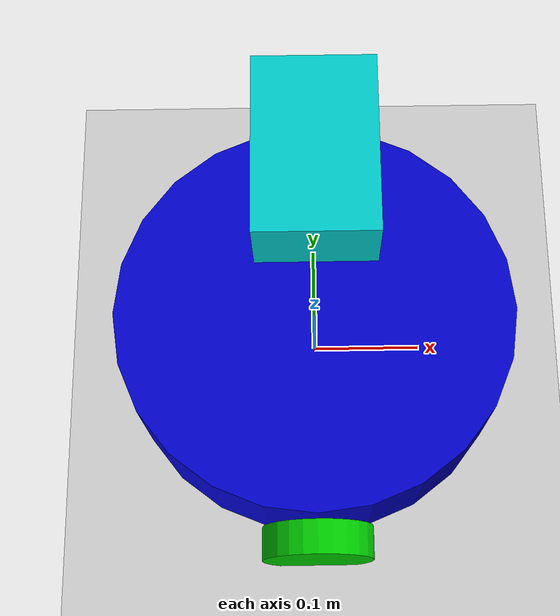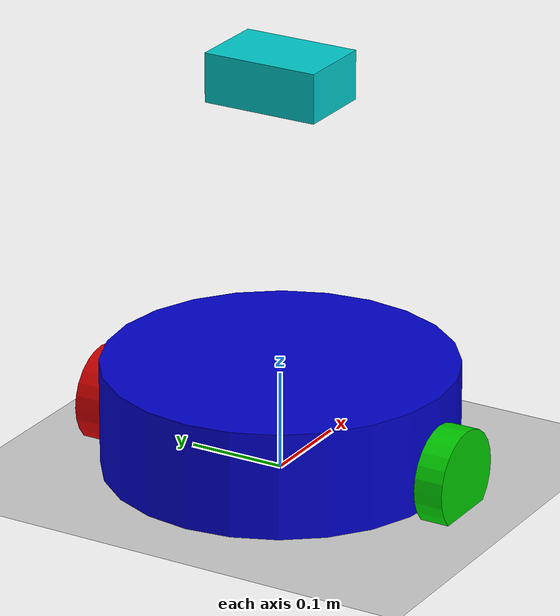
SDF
<sdf version="1.8">
 <world name="dynamic_human_world">
  <plugin filename="gz-sim-physics-system" name="gz::sim::systems::Physics"/>
  <plugin filename="gz-sim-sensors-system" name="gz::sim::systems::Sensors">
   <render_engine>ogre2</render_engine>
  </plugin>
  <plugin filename="gz-sim-user-commands-system" name="gz::sim::systems::UserCommands"/>
  <plugin filename="gz-sim-scene-broadcaster-system" name="gz::sim::systems::SceneBroadcaster"/>
  <light type="directional" name="sun">
   <pose>0 0 10 0 0 0</pose>
   <diffuse>0.8 0.8 0.8 1</diffuse>
   <specular>0.2 0.2 0.2 1</specular>
   <direction>-0.5 0.1 -0.9</direction>
  </light>
  <model name="ground_plane">
   <static>true</static>
   <link name="link">
    <collision name="collision">
     <geometry><plane><normal>0.0 0.0 1</normal><size>100 100</size></plane></geometry>
    </collision>
    <visual name="visual">
     <geometry><plane><normal>0.0 0.0 1</normal><size>100 100</size></plane></geometry>
     <material>
      <ambient>0.8 0.8 0.8 1</ambient>
      <diffuse>0.8 0.8 0.8 1</diffuse>
      <specular>0.8 0.8 0.8 1</specular>
     </material>
    </visual>
   </link>
  </model>
  <include>
   <name>qbot</name>
   <uri>/media/nilum/my-stuff/Research/Human_Robot_Interaction/proactive-social-nav/ros2_ws/src/qbot_description/sdf/qbot.sdf</uri>
  </include>
 </world>
</sdf>

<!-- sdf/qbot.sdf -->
<sdf version="1.8">
    <model name='qbot' canonical_link='base_link'>
        <pose>0 0 0 0 0 0</pose>

        <plugin filename="libgz_ros2_control-system.so" name="gz_ros2_control::GazeboSimROS2ControlPlugin">
            <parameters>/media/nilum/my-stuff/Research/Human_Robot_Interaction/proactive-social-nav/ros2_ws/install/qbot_description/share/qbot_description/config/qbot_controllers.yaml</parameters>
        </plugin>

        <ros2_control name='qbot_system' type='system'>
        <hardware>
            <plugin>gz_ros2_control/GazeboSimSystem</plugin>
        </hardware>
            <joint name="wheel_left_joint">
                <command_interface name="velocity">
                    <param name="min">-10</param>
                    <param name="max">10</param>
                </command_interface>
                <state_interface name="position"/>
                <state_interface name="velocity"/>
            </joint>
            <joint name="wheel_right_joint">
                <command_interface name="velocity">
                    <param name="min">-10</param>
                    <param name="max">10</param>
                </command_interface>
                <state_interface name="position"/>
                <state_interface name="velocity"/>
            </joint>
        </ros2_control>

        <!-- Base -->
        <link name='base_link'>
            <pose>0 0 0.05949 0 0 0</pose>
            <inertial>
                <!-- TODO: Add mass-->
                <mass>2.4</mass>
                <inertia>
                    <ixx>0.019995</ixx>
                    <ixy>0</ixy>
                    <ixz>0</ixz>
                    <iyy>0.019995</iyy>
                    <iyz>0</iyz>
                    <izz>0.03675</izz>
                </inertia>
            </inertial>
            <visual name='base_visual'>
                <!-- TODO: Add geometry-->
                <geometry>
                    <cylinder>
                        <radius>0.178</radius>
                        <length>0.10938</length>
                    </cylinder>
                </geometry>
                <material>
                    <ambient>0.0 0.0 0.8 1</ambient>
                    <diffuse>0.0 0.0 0.8 1</diffuse>
                    <specular>1 1 1 1</specular>
                </material>
            </visual>
            <!-- TODO: Add collision geometry-->
            <collision name='base_collision'>
                <geometry>
                    <cylinder>
                        <radius>0.178</radius>
                        <length>0.10938</length>
                    </cylinder>
                </geometry>
            </collision>
        </link>

        <!-- Left wheel -->
        <link name='wheel_left_link'>
            <pose relative_to='base_link'>0 0.193 -0.0245 -1.57079632679 0 0</pose>
            <inertial>
                <!-- TODO: Add mass-->
                <mass>0.01</mass>
                <inertia>
                    <ixx>0.001</ixx>
                    <ixy>0</ixy>
                    <ixz>0</ixz>
                    <iyy>0.001</iyy>
                    <iyz>0</iyz>
                    <izz>0.001</izz>
                </inertia>
            </inertial>
            <visual name='wheel_left_visual'>
                <!-- TODO: Add geometry-->
                <geometry>
                    <cylinder>
                        <radius>0.05</radius>
                        <length>0.03</length>
                    </cylinder>
                </geometry>
                <material>
                    <ambient>0.8 0.0 0.0 1</ambient>
                    <diffuse>0.8 0.0 0.0 1</diffuse>
                    <specular>1 1 1 1</specular>
                </material>
            </visual>
            <!-- TODO: Add collision geometry-->
            <collision name='wheel_left_collision'>
                <geometry>
                    <cylinder>
                        <radius>0.05</radius>
                        <length>0.03</length>
                    </cylinder>
                </geometry>
            </collision>
        </link>

        <!-- Right wheel -->
        <link name='wheel_right_link'>
            <pose relative_to='base_link'>0 -0.193 -0.0245 -1.57079632679 0 0</pose>
            <inertial>
                <!-- TODO: Add mass-->
                <mass>0.01</mass>
                <inertia>
                    <ixx>0.001</ixx>
                    <ixy>0</ixy>
                    <ixz>0</ixz>
                    <iyy>0.001</iyy>
                    <iyz>0</iyz>
                    <izz>0.001</izz>
                </inertia>
            </inertial>
            <visual name='wheel_right_visual'>
                <!-- TODO: Add geometry-->
                <geometry>
                    <cylinder>
                        <radius>0.05</radius>
                        <length>0.03</length>
                    </cylinder>
                </geometry>
                <material>
                    <ambient>0.0 0.8 0.0 1</ambient>
                    <diffuse>0.0 0.8 0.0 1</diffuse>
                    <specular>1 1 1 1</specular>
                </material>
            </visual>
            <!-- TODO: Add collision geometry-->
            <collision name='wheel_right_collision'>
                <geometry>
                    <cylinder>
                        <radius>0.05</radius>
                        <length>0.03</length>
                    </cylinder>
                </geometry>
            </collision>
        </link>

        <!-- Front caster -->
        <link name='caster_front_link'>
            <pose relative_to='base_link'>0.115 0 -0.0485 -1.57079632679 0 0</pose>
            <inertial>
                <!-- TODO: Add mass-->
                <mass>0.01</mass>
                <inertia>
                    <ixx>0.001</ixx>
                    <ixy>0</ixy>
                    <ixz>0</ixz>
                    <iyy>0.001</iyy>
                    <iyz>0</iyz>
                    <izz>0.001</izz>
                </inertia>
            </inertial>
            <visual name='caster_front_visual'>
                <!-- TODO: Add geometry-->
                <geometry>
                    <cylinder>
                        <radius>0.025</radius>
                        <length>0.03</length>
                    </cylinder>
                </geometry>
                <material>
                    <ambient>0.8 0.8 0.0 1</ambient>
                    <diffuse>0.8 0.8 0.0 1</diffuse>
                    <specular>1 1 1 1</specular>
                </material>
            </visual>
            <!-- TODO: Add collision geometry-->
            <collision name='caster_front_collision'>
                <geometry>
                    <cylinder>
                        <radius>0.025</radius>
                        <length>0.03</length>
                    </cylinder>
                </geometry>
            </collision>
        </link>

        <!-- Back caster -->
        <link name='caster_back_link'>
            <pose relative_to='base_link'>-0.135 0 -0.0485 -1.57079632679 0 0</pose>
            <inertial>
                <!-- TODO: Add mass-->
                <mass>0.01</mass>
                <inertia>
                    <ixx>0.001</ixx>
                    <ixy>0</ixy>
                    <ixz>0</ixz>
                    <iyy>0.001</iyy>
                    <iyz>0</iyz>
                    <izz>0.001</izz>
                </inertia>
            </inertial>
            <visual name='caster_back_visual'>
                <geometry>
                    <cylinder>
                        <radius>0.025</radius>
                        <length>0.03</length>
                    </cylinder>
                </geometry>
                <material>
                    <ambient>0.8 0.0 0.8 1</ambient>
                    <diffuse>0.8 0.0 0.8 1</diffuse>
                    <specular>1 1 1 1</specular>
                </material>
            </visual>
            <!-- TODO: Add collision geometry-->
            <collision name='caster_back_collision'>
                <geometry>
                    <cylinder>
                        <radius>0.025</radius>
                        <length>0.03</length>
                    </cylinder>
                </geometry>
            </collision>
        </link>

        <!-- Sensor mount -->
        <link name='sensor_mount_link'>
            <pose relative_to='base_link'>0 0 0.35 0 0 0</pose>
            <inertial>
                <!-- TODO: Add mass-->
                <mass>0.001</mass>
                <inertia>
                    <ixx>0.0001</ixx>
                    <ixy>0</ixy>
                    <ixz>0</ixz>
                    <iyy>0.000001</iyy>
                    <iyz>0</iyz>
                    <izz>0.0001</izz>
                </inertia>
            </inertial>
            <visual name='sensor_mount_visual'>
                <!-- TODO: Add geometry-->
                <geometry>
                    <box>
                        <size>0.08 0.12 0.05</size>
                    </box>
                </geometry>
                <material>
                    <ambient>0.0 0.8 0.8 1</ambient>
                    <diffuse>0.0 0.8 0.8 1</diffuse>
                    <specular>1 1 1 1</specular>
                </material>
            </visual>
            <!-- TODO: Add collision geometry-->
            <collision name='sensor_mount_collision'>
                <geometry>
                    <box>
                        <size>0.08 0.12 0.05</size>
                    </box>
                </geometry>
            </collision>
            <sensor name='lidar' type='gpu_lidar'>
                <topic>/scan</topic>
                <update_rate>10</update_rate>
                <always_on>1</always_on>
                <visualize>true</visualize>
                <pose relative_to='sensor_mount_link'>0 0 0 0 0 0</pose>
                <gz_frame_id>sensor_mount_link</gz_frame_id>
                <lidar>
                    <scan>
                        <horizontal>
                            <samples>360</samples>
                            <resolution>1</resolution>
                            <min_angle>-3.14159</min_angle>
                            <max_angle>3.14159</max_angle>
                        </horizontal>
                    </scan>
                    <range>
                        <min>0.12</min>
                        <max>10.0</max>
                        <resolution>0.01</resolution>
                    </range>
                    <noise>
                        <type>gaussian</type>
                        <mean>0.0</mean>
                        <stddev>0.01</stddev>
                    </noise>
                </lidar>
            </sensor>
        </link>

        <!-- Wheel Joints -->
        <joint name='wheel_left_joint' type='revolute'>
            <parent>base_link</parent>
            <child>wheel_left_link</child>
            <axis>
                <xyz>0 0 1</xyz>
                <limit>
                    <lower>-1.79769e+308</lower>
                    <upper>1.79769e+308</upper>
                </limit>
            </axis>
        </joint>

        <joint name='wheel_right_joint' type='revolute'>
            <parent>base_link</parent>
            <child>wheel_right_link</child>
            <axis>
                <xyz>0 0 1</xyz>
                <limit>
                    <lower>-1.79769e+308</lower>
                    <upper>1.79769e+308</upper>
                </limit>
            </axis>
        </joint>
        <!-- Castor Joints -->
        <joint name='caster_front_joint' type='fixed'>
            <parent>base_link</parent>
            <child>caster_front_link</child>

        </joint>

        <joint name='caster_back_joint' type='fixed'>
            <parent>base_link</parent>
            <child>caster_back_link</child>
        </joint>
        <!-- Other Joints -->
        <joint name='sensor_mount_joint' type='fixed'>
            <parent>base_link</parent>
            <child>sensor_mount_link</child>
        </joint>
    </model>
</sdf>
